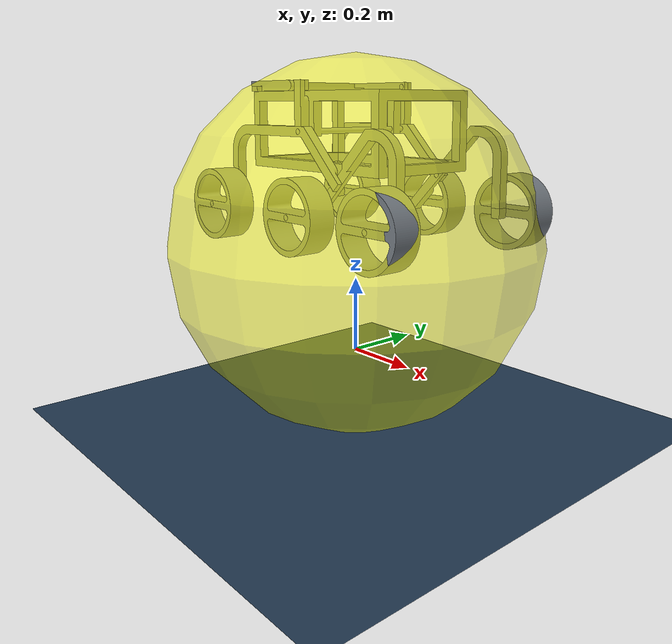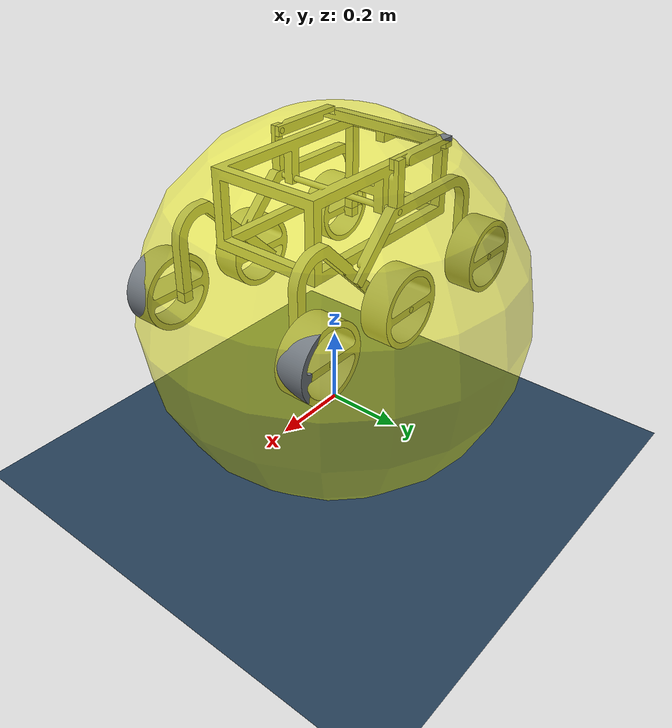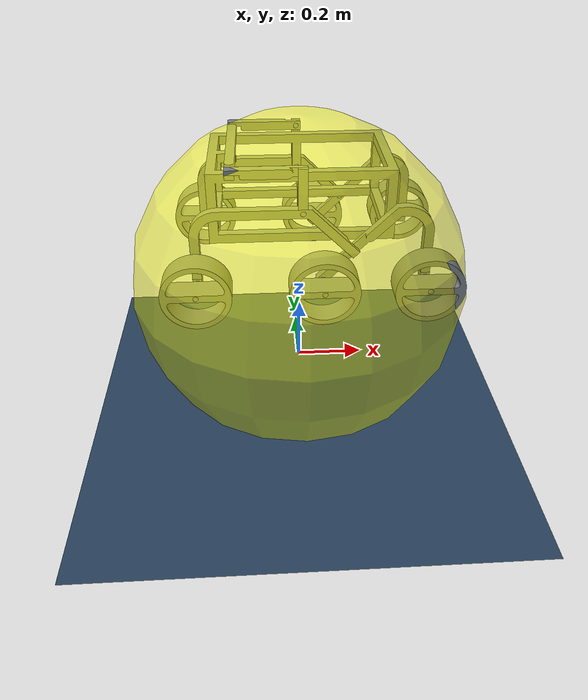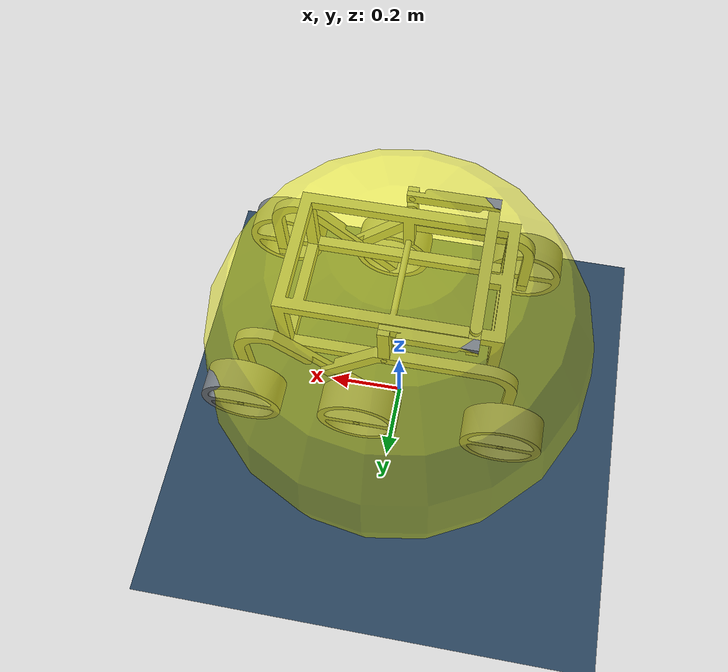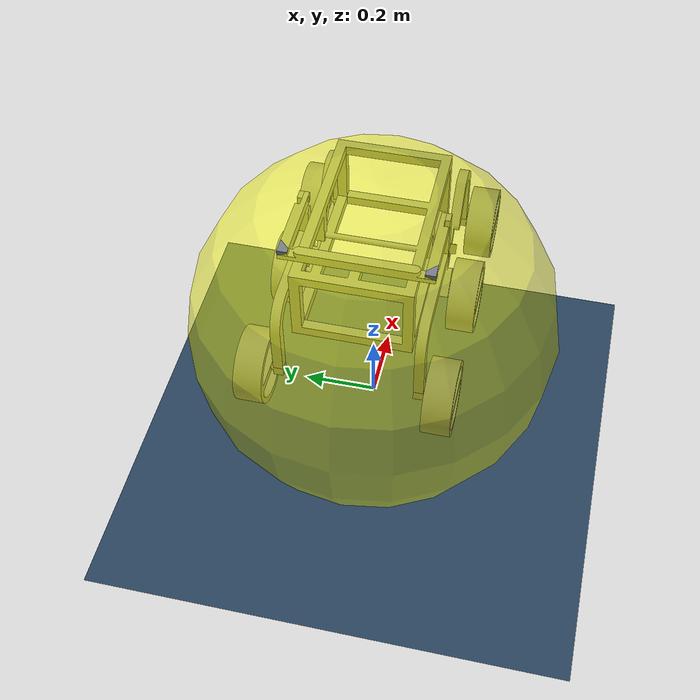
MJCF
<!-- WORLD_FLAT.XML: Flat terrain environment for 6-wheel rover simulation.  -->
<!-- Modular World Definition Architecture (Milestone 1 / R1)                 -->
<!-- Defines:                                                                -->
<!--   1. Compiler relative asset directories and compilation flags          -->
<!--   2. Simulation physics engine parameters (2ms implicitfast integrator) -->
<!--   3. Default joint damping and contact surface friction properties      -->
<!--   4. Skybox atmospheric background and groundplane checker materials    -->
<!--   5. Key and fill illumination sources                                  -->
<!--   6. Infinite flat horizontal ground plane                              -->
<!--   7. Visual waypoint navigation target marker site                      -->
<!--   8. Robot model inclusion (rover_only.xml)                             -->
<!-- Coordinate System: Z-up, right-handed Cartesian (distances in meters).   -->
<!-- Encoding: Strict 7-bit ASCII only (no unicode characters).              -->
<mujoco model="rover_world_flat">

  <!-- 1. COMPILER CONFIGURATION                                             -->
  <!-- meshdir: Directory where OBJ mesh geometry files reside. Evaluated    -->
  <!-- relative to this XML file location:                                   -->
  <!-- assets/worlds/ -> ../../3D_files/mujoco/meshes                        -->
  <!-- autolimits: Enforce joint limits automatically during simulation.     -->
  <!-- inertiafromgeom: Derive missing inertia tensors from geom volumes.    -->
  <!-- angle: All angles specified in radians (SI standard).                 -->
  <compiler meshdir="../../3D_files/mujoco/meshes"
            autolimits="true"
            inertiafromgeom="true"
            angle="radian"/>

  <!-- 2. SIMULATION PHYSICS ENGINE OPTIONS                                  -->
  <!-- integrator: implicitfast provides numerical stability for stiff       -->
  <!-- passive joints, springs, and contact dynamics.                        -->
  <!-- timestep: 0.002 seconds (2 ms / 500 Hz physics rate).                 -->
  <!-- Environment control rate steps 10 physics ticks per action (50 Hz).   -->
  <!-- solver: Newton solver for constraint optimization.                    -->
  <!-- iterations: Maximum 200 solver iterations per timestep.               -->
  <!-- tolerance: Strict numerical convergence threshold (1e-10).            -->
  <option integrator="implicitfast"
          timestep="0.002"
          solver="Newton"
          iterations="200"
          tolerance="1e-10"/>

  <!-- 3. DEFAULT KINEMATIC AND CONTACT DYNAMICS PROPERTIES                  -->
  <!-- joint damping: Viscous damping resisting joint velocity (N*s/m).      -->
  <!-- joint armature: Rotor inertia added to diagonal mass matrix (kg*m^2). -->
  <!-- geom condim: 3D contact friction cone (normal force + 2 friction).    -->
  <!-- geom friction: Sliding (1.0), torsional (0.5), rolling (0.5).         -->
  <!-- geom margin: Contact detection threshold distance in meters.          -->
  <default>
    <joint damping="10.0" armature="1.0"/>
    <geom condim="3" friction="1 0.5 0.5" margin="0"/>
  </default>

  <!-- 4. VISUAL ASSETS AND TEXTURES                                         -->
  <asset>
    <!-- Skybox: Vertical gradient transitioning from sky blue at horizon    -->
    <!-- (0.3, 0.5, 0.7) to dark zenith (0, 0, 0).                             -->
    <texture type="skybox"
             builtin="gradient"
             rgb1="0.3 0.5 0.7"
             rgb2="0 0 0"
             width="512"
             height="3072"/>

    <!-- Groundplane texture: 2D checkerboard pattern with light borders.      -->
    <!-- Alternating slate blue/gray tiles for camera visual odometry contrast. -->
    <texture type="2d"
             name="groundplane"
             builtin="checker"
             mark="edge"
             rgb1="0.2 0.3 0.4"
             rgb2="0.1 0.2 0.3"
             markrgb="0.8 0.8 0.8"
             width="300"
             height="300"/>

    <!-- Groundplane material: References the checker texture.                 -->
    <!-- texuniform: Uniform texture mapping across plane surface.             -->
    <!-- texrepeat: Repeats texture pattern every 5x5 meters.                  -->
    <!-- reflectance: 10 percent specular surface reflectance.                 -->
    <material name="groundplane"
              texture="groundplane"
              texuniform="true"
              texrepeat="5 5"
              reflectance="0.1"/>
  </asset>

  <!-- 5. WORLDBODY: LIGHTING, TERRAIN FLOOR, AND TARGET MARKER SITE         -->
  <worldbody>
    <!-- Key light: Overhead primary illumination source at (0, 0, 4) meters.  -->
    <!-- Direction vector points straight down (0, 0, -1).                     -->
    <light diffuse=".8 .8 .8" pos="0 0 4" dir="0 0 -1"/>

    <!-- Fill light: Secondary angled illumination at (4, 4, 4) meters.        -->
    <!-- Direction vector points inward toward origin (-1, -1, -1).            -->
    <!-- Fills shadows and creates visual contrast for onboard camera sensors. -->
    <light diffuse=".6 .6 .6" pos="4 4 4" dir="-1 -1 -1"/>

    <!-- Floor geom: Infinite horizontal plane representing flat ground.       -->
    <!-- Located at Z = -0.201 meters matching rover chassis spawn elevation.  -->
    <!-- Uses the checkerboard groundplane material for visual odometry.       -->
    <geom name="floor"
          pos="0 0 -0.201"
          size="0 0 1"
          type="plane"
          material="groundplane"/>

    <!-- Target marker site: Navigation goal indicator.                        -->
    <!-- Sphere with radius 0.5m, centered at Z = 0.299m (resting on floor:    -->
    <!-- -0.201 + 0.5 = 0.299m). Yellow semi-transparent appearance.          -->
    <!-- Position is dynamically updated during training and evaluation runs.  -->
    <!-- Site elements have zero collision volume and exert no contact forces. -->
    <site name="target_marker"
          type="sphere"
          size="0.5"
          pos="0 0 0.299"
          rgba="1 1 0 0.5"/>
  </worldbody>

  <!-- 6. ROBOT MODEL INCLUSION                                              -->
  <!-- Includes pristine rover robot model containing chassis bodies, joints, -->
  <!-- passive suspension rockers/bogies, drive motors, steer servos, IMU,   -->
  <!-- suspension encoder sensors, and onboard stereo RGB/depth cameras.     -->
  <include file="../../3D_files/mujoco/rover_only.xml"/>

</mujoco>

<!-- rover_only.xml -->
<mujoco>
  <option integrator="implicitfast" timestep="0.002" solver="Newton" iterations="200" tolerance="1e-10" />
  <compiler autolimits="true" inertiafromgeom="true" angle="radian" />
  <default>
    <joint damping="10.0" armature="1.0" />
    <geom condim="3" friction="1 0.5 0.5" margin="0" />
  </default>
  <asset>
    <mesh name="body" file="body.obj" scale="0.001 0.001 0.001" />
    <material name="body" rgba="0.4470588266849518 0.4745098054409027 0.501960813999176 1.0" shininess="0.8999999761581421" />
    <mesh name="rocker_right_leg" file="rocker_right_leg.obj" scale="0.001 0.001 0.001" />
    <material name="rocker_right_leg" rgba="0.4470588266849518 0.4745098054409027 0.501960813999176 1.0" shininess="0.8999999761581421" />
    <mesh name="rocker_left_leg" file="rocker_left_leg.obj" scale="0.001 0.001 0.001" />
    <material name="rocker_left_leg" rgba="0.4470588266849518 0.4745098054409027 0.501960813999176 1.0" shininess="0.8999999761581421" />
    <mesh name="conn1_right" file="conn1_right.obj" scale="0.001 0.001 0.001" />
    <material name="conn1_right" rgba="0.4470588266849518 0.4745098054409027 0.501960813999176 1.0" shininess="0.8999999761581421" />
    <mesh name="conn1_left" file="conn1_left.obj" scale="0.001 0.001 0.001" />
    <material name="conn1_left" rgba="0.4470588266849518 0.4745098054409027 0.501960813999176 1.0" shininess="0.8999999761581421" />
    <mesh name="conn2_right" file="conn2_right.obj" scale="0.001 0.001 0.001" />
    <material name="conn2_right" rgba="0.4470588266849518 0.4745098054409027 0.501960813999176 1.0" shininess="0.8999999761581421" />
    <mesh name="conn2_left" file="conn2_left.obj" scale="0.001 0.001 0.001" />
    <material name="conn2_left" rgba="0.4470588266849518 0.4745098054409027 0.501960813999176 1.0" shininess="0.8999999761581421" />
    <mesh name="diff_beam" file="diff_beam.obj" scale="0.001 0.001 0.001" />
    <material name="diff_beam" rgba="0.4470588266849518 0.4745098054409027 0.501960813999176 1.0" shininess="0.8999999761581421" />
    <mesh name="bogie_right_leg" file="bogie_right_leg.obj" scale="0.001 0.001 0.001" />
    <material name="bogie_right_leg" rgba="0.4470588266849518 0.4745098054409027 0.501960813999176 1.0" shininess="0.8999999761581421" />
    <mesh name="bogie_left_leg" file="bogie_left_leg.obj" scale="0.001 0.001 0.001" />
    <material name="bogie_left_leg" rgba="0.4470588266849518 0.4745098054409027 0.501960813999176 1.0" shininess="0.8999999761581421" />
    <mesh name="wheel_rotator_right_back" file="wheel_rotator_right_back.obj" scale="0.001 0.001 0.001" />
    <material name="wheel_rotator_right_back" rgba="0.4470588266849518 0.4745098054409027 0.501960813999176 1.0" shininess="0.8999999761581421" />
    <mesh name="wheel_rotator_right_front" file="wheel_rotator_right_front.obj" scale="0.001 0.001 0.001" />
    <material name="wheel_rotator_right_front" rgba="0.4470588266849518 0.4745098054409027 0.501960813999176 1.0" shininess="0.8999999761581421" />
    <mesh name="wheel_rotator_left_front" file="wheel_rotator_left_front.obj" scale="0.001 0.001 0.001" />
    <material name="wheel_rotator_left_front" rgba="0.4470588266849518 0.4745098054409027 0.501960813999176 1.0" shininess="0.8999999761581421" />
    <mesh name="wheel_rotator_left_back" file="wheel_rotator_left_back.obj" scale="0.001 0.001 0.001" />
    <material name="wheel_rotator_left_back" rgba="0.4470588266849518 0.4745098054409027 0.501960813999176 1.0" shininess="0.8999999761581421" />
    <mesh name="wheel_right_back" file="wheel_right_back.obj" scale="0.001 0.001 0.001" />
    <material name="wheel_right_back" rgba="0.4470588266849518 0.4745098054409027 0.501960813999176 1.0" shininess="0.8999999761581421" />
    <mesh name="wheel_right_middle" file="wheel_right_middle.obj" scale="0.001 0.001 0.001" />
    <material name="wheel_right_middle" rgba="0.4470588266849518 0.4745098054409027 0.501960813999176 1.0" shininess="0.8999999761581421" />
    <mesh name="wheel_right_front" file="wheel_right_front.obj" scale="0.001 0.001 0.001" />
    <material name="wheel_right_front" rgba="0.4470588266849518 0.4745098054409027 0.501960813999176 1.0" shininess="0.8999999761581421" />
    <mesh name="wheel_left_back" file="wheel_left_back.obj" scale="0.001 0.001 0.001" />
    <material name="wheel_left_back" rgba="0.4470588266849518 0.4745098054409027 0.501960813999176 1.0" shininess="0.8999999761581421" />
    <mesh name="wheel_left_middle" file="wheel_left_middle.obj" scale="0.001 0.001 0.001" />
    <material name="wheel_left_middle" rgba="0.4470588266849518 0.4745098054409027 0.501960813999176 1.0" shininess="0.8999999761581421" />
    <mesh name="wheel_left_front" file="wheel_left_front.obj" scale="0.001 0.001 0.001" />
    <material name="wheel_left_front" rgba="0.4470588266849518 0.4745098054409027 0.501960813999176 1.0" shininess="0.8999999761581421" />
  </asset>
  <worldbody>
    <body name="body" pos="0 0 0.5" quat="1.0 0.0 0.0 0.0">
      <freejoint name="root" />
      <geom type="mesh" name="body geom" mesh="body" material="body" mass="2.151784" />
      <site name="body site" pos="-0.0 0.0 -0.0" quat="0.0 0.0 0.0 1.0" rgba="0 0 0 0" />
      <body name="rocker_right_leg" pos="0 0 0" quat="1.0 0.0 0.0 0.0">
        <geom type="mesh" name="rocker_right_leg geom" mesh="rocker_right_leg" material="rocker_right_leg" mass="0.375779" />
        <site name="rocker_right_leg site" pos="7.726197315371666e-17 -1.8282806515611008e-16 -2.2132292553525e-16" quat="-7.155745187450983e-16 -3.863098657685826e-16 0.0 1.0" rgba="0 0 0 0" />
        <joint type="hinge" name="pass_left_rocker" pos="0.0 -0.18999999999999997 0.10000000000000002" axis="0.0 -1.0 2.220446049250313e-16" damping="20.0" stiffness="100.0" armature="0.01" />
        <body name="conn1_right" pos="0 0 0" quat="1.0 0.0 0.0 0.0">
          <geom type="mesh" name="conn1_right geom" mesh="conn1_right" material="conn1_right" mass="0.072520" />
          <site name="conn1_right site" pos="-9.226482981561053e-17 -1.4302806544378742e-16 -2.3903376955837814e-16" quat="-7.155745190051726e-16 -3.8630986576858223e-16 4.780789697963833e-16 1.0" rgba="0 0 0 0" />
          <joint type="hinge" name="pass_right_conn1" pos="-9.812270590521906e-18 -0.17729999999999996 0.11269999999999997" axis="-7.726197315371652e-16 1.4311490374901966e-15 1.0" damping="20.0" stiffness="100.0" armature="0.01" />
        </body>
        <body name="bogie_right_leg" pos="0 0 0" quat="1.0 0.0 0.0 0.0">
          <geom type="mesh" name="bogie_right_leg geom" mesh="bogie_right_leg" material="bogie_right_leg" mass="0.318301" />
          <site name="bogie_right_leg site" pos="8.637042776708681e-17 -1.893198882999263e-16 -2.1092621801186793e-16" quat="-9.376191236701296e-16 0.0 0.0 1.0" rgba="0 0 0 0" />
          <joint type="hinge" name="pass_right_rockerbogie" pos="0.13592266222324292 -0.1646000000000002 -0.018483174465507405" axis="8.659560562355051e-17 1.0 -2.2759572004815705e-15" damping="20.0" stiffness="100.0" armature="0.01" />
          <body name="wheel_rotator_right_front" pos="0 0 0" quat="1.0 0.0 0.0 0.0">
            <geom type="mesh" name="wheel_rotator_right_front geom" mesh="wheel_rotator_right_front" material="wheel_rotator_right_front" mass="0.045814" friction="2.0 0.005 0.0001" />
            <site name="wheel_rotator_right_front site" pos="0.6237453244466125 5.942060182143583e-17 -8.224522844369804e-18" quat="-9.376191236701296e-16 0.0 0.0 1.0" rgba="0 0 0 0" />
            <joint type="hinge" name="srv_right_front_rotator" pos="0.3364453244466123 -0.17730000000000032 -0.11269999999999977" axis="0.0 -1.9977029272549944e-15 -1.0" damping="2.0" armature="0.01" />
            <body name="wheel_right_front" pos="0 0 0" quat="1.0 0.0 0.0 0.0">
              <geom type="mesh" name="wheel_right_front geom" mesh="wheel_right_front" material="wheel_right_front" mass="0.2" friction="2.0 0.005 0.0001" />
              <site name="wheel_right_front site" pos="0.6237453244466122 -1.578385867140966e-17 4.429780223822254e-16" quat="-8.265968212076141e-16 -7.707523721847567e-16 0.0 1.0" rgba="0 0 0 0" />
              <joint type="hinge" name="drv_right_front_wheel" pos="0.33644532444661235 -0.2700000000000002 -0.09999999999999949" axis="-1.9721522630525295e-30 -1.0 2.0539125955565396e-15" damping="0.5" armature="0.01" />
            </body>
          </body>
          <body name="wheel_right_middle" pos="0 0 0" quat="1.0 0.0 0.0 0.0">
            <geom type="mesh" name="wheel_right_middle geom" mesh="wheel_right_middle" material="wheel_right_middle" mass="0.2" friction="2.0 0.005 0.0001" />
            <site name="wheel_right_middle site" pos="0.3417058366887592 -1.30819888248244e-16 -8.842031402607514e-15" quat="-9.376191236701296e-16 0.0 0.0 1.0" rgba="0 0 0 0" />
            <joint type="hinge" name="drv_right_middle_wheel" pos="0.05440583668875911 -0.2700000000000003 -0.10000000000000825" axis="0.0 -1.0 2.3869795029440866e-15" damping="0.5" armature="0.01" />
          </body>
        </body>
        <body name="wheel_rotator_right_back" pos="0 0 0" quat="1.0 0.0 0.0 0.0">
          <geom type="mesh" name="wheel_rotator_right_back geom" mesh="wheel_rotator_right_back" material="wheel_rotator_right_back" mass="0.045814" friction="2.0 0.005 0.0001" />
          <site name="wheel_rotator_right_back site" pos="6.491004093495458e-17 -1.6010790976654713e-16 -2.240337285453354e-16" quat="-7.155745187450983e-16 -3.8630986576858253e-16 0.0 1.0" rgba="0 0 0 0" />
          <joint type="hinge" name="srv_right_back_rotator" pos="-0.28729999999999994 -0.1773000000000005 -0.11270000000000027" axis="7.726197315371652e-16 -1.553613717404932e-15 -1.0" damping="2.0" armature="0.01" />
          <body name="wheel_right_back" pos="0 0 0" quat="1.0 0.0 0.0 0.0">
            <geom type="mesh" name="wheel_right_back geom" mesh="wheel_right_back" material="wheel_right_back" mass="0.2" friction="2.0 0.005 0.0001" />
            <site name="wheel_right_back site" pos="1.4116684246030877e-16 -6.476895136190875e-17 -3.3842836082051287e-16" quat="-6.045522162825826e-16 0.0 0.0 1.0" rgba="0 0 0 0" />
            <joint type="hinge" name="drv_right_back_wheel" pos="-0.2872999999999999 -0.27000000000000024 -0.09999999999999992" axis="0.0 -1.0 1.7763568394002505e-15" damping="0.5" armature="0.01" />
          </body>
        </body>
      </body>
      <body name="rocker_left_leg" pos="0 0 0" quat="1.0 0.0 0.0 0.0">
        <geom type="mesh" name="rocker_left_leg geom" mesh="rocker_left_leg" material="rocker_left_leg" mass="0.375779" />
        <site name="rocker_left_leg site" pos="1.9167241245858794e-17 7.000026476456348e-17 -7.356960720283828e-19" quat="0.0 0.0 0.0 1.0" rgba="0 0 0 0" />
        <joint type="hinge" name="pass_right_rocker" pos="0.0 0.19000000000000003 0.09999999999999992" axis="0.0 -1.0 2.220446049250313e-16" damping="20.0" stiffness="100.0" armature="0.01" />
        <body name="conn1_left" pos="0 0 0" quat="1.0 0.0 0.0 0.0">
          <geom type="mesh" name="conn1_left geom" mesh="conn1_left" material="conn1_left" mass="0.072520" />
          <site name="conn1_left site" pos="-7.377352525219327e-18 4.500267813573931e-18 -1.503569606906507e-17" quat="0.0 0.0 0.0 1.0" rgba="0 0 0 0" />
          <joint type="hinge" name="pass_left_conn1" pos="1.9167241245858794e-17 0.1773 0.11269999999999993" axis="0.0 -1.2246467991473532e-16 -1.0" damping="20.0" stiffness="100.0" armature="0.01" />
        </body>
        <body name="bogie_left_leg" pos="0 0 0" quat="1.0 0.0 0.0 0.0">
          <geom type="mesh" name="bogie_left_leg geom" mesh="bogie_left_leg" material="bogie_left_leg" mass="0.318301" />
          <site name="bogie_left_leg site" pos="-1.7601049802723487e-17 9.310434355070712e-17 -4.545467724370338e-17" quat="0.0 -3.790201999626894e-16 0.0 1.0" rgba="0 0 0 0" />
          <joint type="hinge" name="pass_left_rockerbogie" pos="0.1359226622232428 0.16460000000000002 -0.018483174465507467" axis="8.659560562354901e-17 1.0 4.440892098500626e-16" damping="20.0" stiffness="100.0" armature="0.01" />
          <body name="wheel_rotator_left_front" pos="0 0 0" quat="1.0 0.0 0.0 0.0">
            <geom type="mesh" name="wheel_rotator_left_front geom" mesh="wheel_rotator_left_front" material="wheel_rotator_left_front" mass="0.045814" friction="2.0 0.005 0.0001" />
            <site name="wheel_rotator_left_front site" pos="0.04914532444661175 1.52910236319365e-17 9.561646911610838e-17" quat="-3.7902019996268945e-16 2.8292768660732965e-16 1.0 2.9086327691241854e-16" rgba="0 0 0 0" />
            <joint type="hinge" name="srv_left_front_rotator" pos="0.3364453244466122 0.17729999999999996 -0.11269999999999987" axis="7.580403999253788e-16 -4.4339069329992415e-16 -1.0" damping="2.0" armature="0.01" />
            <body name="wheel_left_front" pos="0 0 0" quat="1.0 0.0 0.0 0.0">
              <geom type="mesh" name="wheel_left_front geom" mesh="wheel_left_front" material="wheel_left_front" mass="0.2" friction="2.0 0.005 0.0001" />
              <site name="wheel_left_front site" pos="0.04914532444661195 0.4679999999999998 -0.19999999999999976" quat="2.908632769124185e-16 1.0 -5.604834427636185e-16 -3.4825327770850875e-16" rgba="0 0 0 0" />
              <joint type="hinge" name="drv_left_front_wheel" pos="0.33644532444661207 0.2699999999999998 -0.09999999999999977" axis="-5.817265538248371e-16 -1.0 4.440892098500626e-16" damping="0.5" armature="0.01" />
            </body>
          </body>
          <body name="wheel_left_middle" pos="0 0 0" quat="1.0 0.0 0.0 0.0">
            <geom type="mesh" name="wheel_left_middle geom" mesh="wheel_left_middle" material="wheel_left_middle" mass="0.2" friction="2.0 0.005 0.0001" />
            <site name="wheel_left_middle site" pos="0.3417058366887589 0.4679999999999999 -8.640111535189077e-15" quat="0.0 0.0 0.0 1.0" rgba="0 0 0 0" />
            <joint type="hinge" name="drv_left_middle_wheel" pos="0.05440583668875899 0.26999999999999996 -0.10000000000000858" axis="0.0 -1.0 2.220446049250313e-16" damping="0.5" armature="0.01" />
          </body>
        </body>
        <body name="wheel_rotator_left_back" pos="0 0 0" quat="1.0 0.0 0.0 0.0">
          <geom type="mesh" name="wheel_rotator_left_back geom" mesh="wheel_rotator_left_back" material="wheel_rotator_left_back" mass="0.045814" friction="2.0 0.005 0.0001" />
          <site name="wheel_rotator_left_back site" pos="-0.5746000000000004 1.3341425573199623e-17 1.8606340159442142e-17" quat="0.0 0.0 1.0 2.369757418392935e-16" rgba="0 0 0 0" />
          <joint type="hinge" name="srv_left_back_rotator" pos="-0.2873 0.17730000000000018 -0.11270000000000013" axis="5.804231674381205e-32 1.2246467991473532e-16 -1.0" damping="2.0" armature="0.01" />
          <body name="wheel_left_back" pos="0 0 0" quat="1.0 0.0 0.0 0.0">
            <geom type="mesh" name="wheel_left_back geom" mesh="wheel_left_back" material="wheel_left_back" mass="0.2" friction="2.0 0.005 0.0001" />
            <site name="wheel_left_back site" pos="-0.5746 0.4680000000000003 -0.19999999999999976" quat="2.3697574183929353e-16 1.0 0.0 -4.782261221546544e-16" rgba="0 0 0 0" />
            <joint type="hinge" name="drv_left_back_wheel" pos="-0.2873 0.27000000000000013 -0.10000000000000006" axis="-4.739514836785873e-16 -1.0 -2.220446049250313e-16" damping="0.5" armature="0.01" />
          </body>
        </body>
      </body>
      <body name="diff_beam" pos="0 0 0" quat="1.0 0.0 0.0 0.0">
        <geom type="mesh" name="diff_beam geom" mesh="diff_beam" material="diff_beam" mass="0.209382" />
        <site name="diff_beam site" pos="9.137825860051809e-17 -1.0376656977338119e-16 -1.3876986865598834e-18" quat="0.0 0.0 0.0 1.0" rgba="0 0 0 0" />
        <joint type="hinge" name="pass_diff" pos="-0.18650000000000003 -6.318299999999999e-14 0.2" axis="0.0 0.0 1.0" damping="20.0" stiffness="100.0" armature="0.01" />
        <body name="conn2_right" pos="0 0 0" quat="1.0 0.0 0.0 0.0">
          <geom type="mesh" name="conn2_right geom" mesh="conn2_right" material="conn2_right" mass="0.115832" />
          <site name="conn2_right site" pos="-1.8633723069938156e-16 -7.67280654437869e-17 -2.962337695583786e-16" quat="-7.155745190051728e-16 0.0 4.780789697963833e-16 1.0" rgba="0 0 0 0" />
          <joint type="hinge" name="pass_right_diff_conn2" pos="-0.18649999999999997 -0.17729999999999996 0.20000000000000007" axis="-4.725604379196148e-31 -2.2134608837489314e-16 -1.0" damping="20.0" stiffness="100.0" armature="0.01" />
        </body>
        <body name="conn2_left" pos="0 0 0" quat="1.0 0.0 0.0 0.0">
          <geom type="mesh" name="conn2_left geom" mesh="conn2_left" material="conn2_left" mass="0.115832" />
          <site name="conn2_left site" pos="2.2217740999645282e-17 -1.0729973917181688e-16 -5.885740549946897e-17" quat="0.0 0.0 0.0 1.0" rgba="0 0 0 0" />
          <joint type="hinge" name="pass_left_diff_conn2" pos="-0.18649999999999997 0.17729999999999987 0.2" axis="0.0 0.0 1.0" damping="20.0" stiffness="100.0" armature="0.01" />
        </body>
      </body>
      <camera name="cam_front_left" pos="0.25 0.15 0.2" xyaxes="0 -1 0 0 0 1" fovy="60" />
      <camera name="cam_side_left" pos="0.25 0.15 0.2" xyaxes="1 0 0 0 0 1" fovy="60" />
      <camera name="cam_front_right" pos="0.25 -0.15 0.2" xyaxes="0 -1 0 0 0 1" fovy="60" />
      <camera name="cam_side_right" pos="0.25 -0.15 0.2" xyaxes="-1 0 0 0 0 1" fovy="60" />
    </body>
  </worldbody>
  <contact />
  <equality>
    <connect body1="conn1_right" body2="conn2_right" name="connect_hinge_pass_right_conns_1" anchor="-7.69174498565964e-17 -0.16459999999999975 0.21270000000000003" />
    <connect body1="conn1_right" body2="conn2_right" name="connect_hinge_pass_right_conns_2" anchor="-8.561307319628856e-17 -0.15459999999999974 0.2127" />
    <connect body1="conn1_left" body2="conn2_left" name="connect_hinge_pass_left_conns_1" anchor="1.5022647474780674e-17 0.16459999999999989 0.21270000000000003" />
    <connect body1="conn1_left" body2="conn2_left" name="connect_hinge_pass_left_conns_2" anchor="1.5888603531016166e-17 0.1745999999999999 0.21270000000000003" />
  </equality>
  <tendon />
  <actuator>
    <velocity name="drv_right_front_wheel" joint="drv_right_front_wheel" kv="5" forcelimited="true" forcerange="-10 10" gear="-1" />
    <velocity name="drv_right_middle_wheel" joint="drv_right_middle_wheel" kv="5" forcelimited="true" forcerange="-10 10" gear="-1" />
    <velocity name="drv_right_back_wheel" joint="drv_right_back_wheel" kv="5" forcelimited="true" forcerange="-10 10" gear="-1" />
    <velocity name="drv_left_front_wheel" joint="drv_left_front_wheel" kv="5" forcelimited="true" forcerange="-10 10" gear="-1" />
    <velocity name="drv_left_middle_wheel" joint="drv_left_middle_wheel" kv="5" forcelimited="true" forcerange="-10 10" gear="-1" />
    <velocity name="drv_left_back_wheel" joint="drv_left_back_wheel" kv="5" forcelimited="true" forcerange="-10 10" gear="-1" />
    <position name="srv_right_front_rotator" joint="srv_right_front_rotator" kp="500" gear="-0.7854" />
    <position name="srv_right_back_rotator" joint="srv_right_back_rotator" kp="500" gear="-0.7854" />
    <position name="srv_left_front_rotator" joint="srv_left_front_rotator" kp="500" gear="-0.7854" />
    <position name="srv_left_back_rotator" joint="srv_left_back_rotator" kp="500" gear="-0.7854" />
  </actuator>
  <sensor>
    <framequat name="imu_quat" objtype="body" objname="body" />
    <frameangvel name="imu_angvel" objtype="body" objname="body" />
    <jointpos name="sensor_pass_left_rocker" joint="pass_left_rocker" />
    <jointpos name="sensor_pass_right_rocker" joint="pass_right_rocker" />
    <jointpos name="sensor_pass_left_rockerbogie" joint="pass_left_rockerbogie" />
    <jointpos name="sensor_pass_right_rockerbogie" joint="pass_right_rockerbogie" />
  </sensor>
</mujoco>
